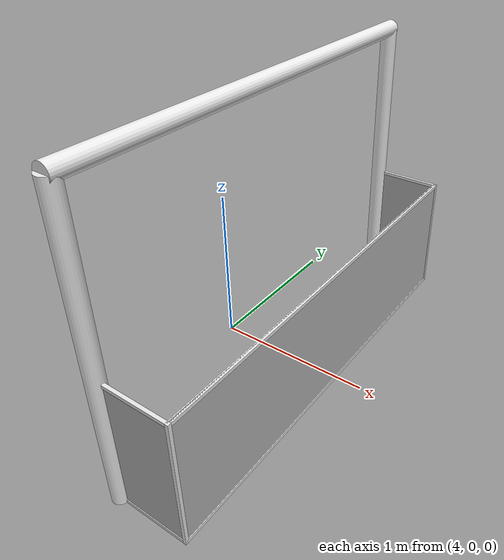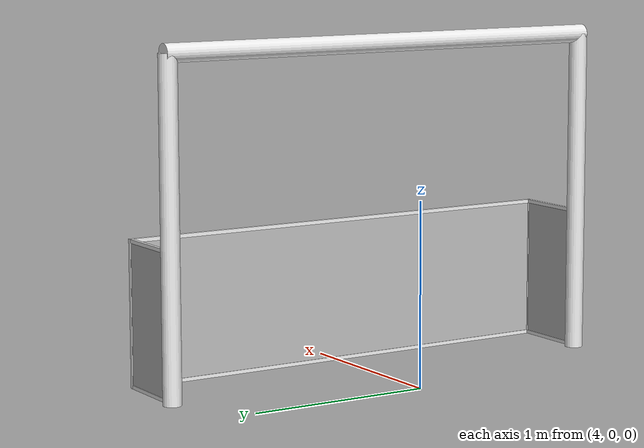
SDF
<sdf version='1.6'>
    <model name='RoboCup 2014 SPL Goal'>
        <static>false</static>
        <link name='left_post'>
            <pose frame=''>0 1.3 0.9 0 -0 0</pose>
            <collision name='collision'>
                <geometry>
                    <cylinder>
                        <radius>0.05</radius>
                        <length>1.8</length>
                    </cylinder>
                </geometry>
                <max_contacts>10</max_contacts>
                <surface>
                    <contact>
                        <ode/>
                    </contact>
                    <bounce/>
                    <friction>
                        <torsional>
                            <ode/>
                        </torsional>
                        <ode/>
                    </friction>
                </surface>
            </collision>
            <inertial>
                <mass>0.01</mass>
                <inertia>
                    <ixx>0.0000001</ixx>
                    <ixy>0.0000001</ixy>
                    <ixz>0.0000001</ixz>
                    <iyy>0.0000001</iyy>
                    <iyz>0.0000001</iyz>
                    <izz>0.0000001</izz>
                </inertia>
            </inertial>
            <visual name='visual'>
                <geometry>
                    <cylinder>
                        <radius>0.05</radius>
                        <length>1.8</length>
                    </cylinder>
                </geometry>
                <material>
                    <script>
                        <uri>file://media/materials/scripts/gazebo.material</uri>
                        <name>Gazebo/White</name>
                    </script>
                </material>
            </visual>
            <self_collide>0</self_collide>
            <kinematic>1</kinematic>
        </link>
        <link name='right_post'>
            <pose frame=''>0 -1.3 0.9 0 -0 0</pose>
            <inertial>
                <mass>0.01</mass>
                <inertia>
                    <ixx>0.0000001</ixx>
                    <ixy>0.0000001</ixy>
                    <ixz>0.0000001</ixz>
                    <iyy>0.0000001</iyy>
                    <iyz>0.0000001</iyz>
                    <izz>0.0000001</izz>
                </inertia>
            </inertial>
            <collision name='collision'>
                <geometry>
                    <cylinder>
                        <radius>0.05</radius>
                        <length>1.8</length>
                    </cylinder>
                </geometry>
                <max_contacts>10</max_contacts>
                <surface>
                    <contact>
                        <ode/>
                    </contact>
                    <bounce/>
                    <friction>
                        <torsional>
                            <ode/>
                        </torsional>
                        <ode/>
                    </friction>
                </surface>
            </collision>
            <visual name='visual'>
                <geometry>
                    <cylinder>
                        <radius>0.05</radius>
                        <length>1.8</length>
                    </cylinder>
                </geometry>
                <material>
                    <script>
                        <uri>file://media/materials/scripts/gazebo.material</uri>
                        <name>Gazebo/White</name>
                    </script>
                </material>
            </visual>
            <self_collide>0</self_collide>
            <kinematic>1</kinematic>
        </link>
        <link name='left_support_horiz_lower'>
            <pose frame=''>0.24 1.3 0.01 0 -0 0</pose>
            <inertial>
                <mass>0.01</mass>
                <inertia>
                    <ixx>0.0000001</ixx>
                    <ixy>0.0000001</ixy>
                    <ixz>0.0000001</ixz>
                    <iyy>0.0000001</iyy>
                    <iyz>0.0000001</iyz>
                    <izz>0.0000001</izz>
                </inertia>
            </inertial>
            <collision name='collision'>
                <geometry>
                    <box>
                        <size>0.38 0.02 0.02</size>
                    </box>
                </geometry>
                <max_contacts>10</max_contacts>
                <surface>
                    <contact>
                        <ode/>
                    </contact>
                    <bounce/>
                    <friction>
                        <torsional>
                            <ode/>
                        </torsional>
                        <ode/>
                    </friction>
                </surface>
            </collision>
            <visual name='visual'>
                <geometry>
                    <box>
                        <size>0.38 0.02 0.02</size>
                    </box>
                </geometry>
                <material>
                    <script>
                        <uri>file://media/materials/scripts/gazebo.material</uri>
                        <name>Gazebo/White</name>
                    </script>
                </material>
            </visual>
            <self_collide>0</self_collide>
            <kinematic>1</kinematic>
        </link>
        <link name='left_support_horiz_upper'>
            <pose frame=''>0.24 1.3 0.79 0 -0 0</pose>
            <inertial>
                <mass>0.01</mass>
                <inertia>
                    <ixx>0.0000001</ixx>
                    <ixy>0.0000001</ixy>
                    <ixz>0.0000001</ixz>
                    <iyy>0.0000001</iyy>
                    <iyz>0.0000001</iyz>
                    <izz>0.0000001</izz>
                </inertia>
            </inertial>
            <collision name='collision'>
                <geometry>
                    <box>
                        <size>0.38 0.02 0.02</size>
                    </box>
                </geometry>
                <max_contacts>10</max_contacts>
                <surface>
                    <contact>
                        <ode/>
                    </contact>
                    <bounce/>
                    <friction>
                        <torsional>
                            <ode/>
                        </torsional>
                        <ode/>
                    </friction>
                </surface>
            </collision>
            <visual name='visual'>
                <geometry>
                    <box>
                        <size>0.38 0.02 0.02</size>
                    </box>
                </geometry>
                <material>
                    <script>
                        <uri>file://media/materials/scripts/gazebo.material</uri>
                        <name>Gazebo/White</name>
                    </script>
                </material>
            </visual>
            <self_collide>0</self_collide>
            <kinematic>1</kinematic>
        </link>
        <link name='left_support_vertical'>
            <pose frame=''>0.44 1.3 0.4 3.14159 1.57079 3.14159</pose>
            <inertial>
                <mass>0.01</mass>
                <inertia>
                    <ixx>0.0000001</ixx>
                    <ixy>0.0000001</ixy>
                    <ixz>0.0000001</ixz>
                    <iyy>0.0000001</iyy>
                    <iyz>0.0000001</iyz>
                    <izz>0.0000001</izz>
                </inertia>
            </inertial>
            <collision name='collision'>
                <geometry>
                    <box>
                        <size>0.8 0.02 0.02</size>
                    </box>
                </geometry>
                <max_contacts>10</max_contacts>
                <surface>
                    <contact>
                        <ode/>
                    </contact>
                    <bounce/>
                    <friction>
                        <torsional>
                            <ode/>
                        </torsional>
                        <ode/>
                    </friction>
                </surface>
            </collision>
            <visual name='visual'>
                <geometry>
                    <box>
                        <size>0.8 0.02 0.02</size>
                    </box>
                </geometry>
                <material>
                    <script>
                        <uri>file://media/materials/scripts/gazebo.material</uri>
                        <name>Gazebo/White</name>
                    </script>
                </material>
            </visual>
            <self_collide>0</self_collide>
            <kinematic>1</kinematic>
        </link>
        <link name='right_support_horiz_lower'>
            <pose frame=''>0.24 -1.3 0.01 0 -0 0</pose>
            <inertial>
                <mass>0.01</mass>
                <inertia>
                    <ixx>0.0000001</ixx>
                    <ixy>0.0000001</ixy>
                    <ixz>0.0000001</ixz>
                    <iyy>0.0000001</iyy>
                    <iyz>0.0000001</iyz>
                    <izz>0.0000001</izz>
                </inertia>
            </inertial>
            <collision name='collision'>
                <geometry>
                    <box>
                        <size>0.38 0.02 0.02</size>
                    </box>
                </geometry>
                <max_contacts>10</max_contacts>
                <surface>
                    <contact>
                        <ode/>
                    </contact>
                    <bounce/>
                    <friction>
                        <torsional>
                            <ode/>
                        </torsional>
                        <ode/>
                    </friction>
                </surface>
            </collision>
            <visual name='visual'>
                <geometry>
                    <box>
                        <size>0.38 0.02 0.02</size>
                    </box>
                </geometry>
                <material>
                    <script>
                        <uri>file://media/materials/scripts/gazebo.material</uri>
                        <name>Gazebo/White</name>
                    </script>
                </material>
            </visual>
            <self_collide>0</self_collide>
            <kinematic>1</kinematic>
        </link>
        <link name='right_support_horiz_upper'>
            <pose frame=''>0.24 -1.3 0.79 0 -0 0</pose>
            <inertial>
                <mass>0.01</mass>
                <inertia>
                    <ixx>0.0000001</ixx>
                    <ixy>0.0000001</ixy>
                    <ixz>0.0000001</ixz>
                    <iyy>0.0000001</iyy>
                    <iyz>0.0000001</iyz>
                    <izz>0.0000001</izz>
                </inertia>
            </inertial>
            <collision name='collision'>
                <geometry>
                    <box>
                        <size>0.38 0.02 0.02</size>
                    </box>
                </geometry>
                <max_contacts>10</max_contacts>
                <surface>
                    <contact>
                        <ode/>
                    </contact>
                    <bounce/>
                    <friction>
                        <torsional>
                            <ode/>
                        </torsional>
                        <ode/>
                    </friction>
                </surface>
            </collision>
            <visual name='visual'>
                <geometry>
                    <box>
                        <size>0.38 0.02 0.02</size>
                    </box>
                </geometry>
                <material>
                    <script>
                        <uri>file://media/materials/scripts/gazebo.material</uri>
                        <name>Gazebo/White</name>
                    </script>
                </material>
            </visual>
            <self_collide>0</self_collide>
            <kinematic>1</kinematic>
        </link>
        <link name='right_support_vertical'>
            <pose frame=''>0.44 -1.3 0.4 3.14159 1.57079 3.14159</pose>
            <inertial>
                <mass>0.01</mass>
                <inertia>
                    <ixx>0.0000001</ixx>
                    <ixy>0.0000001</ixy>
                    <ixz>0.0000001</ixz>
                    <iyy>0.0000001</iyy>
                    <iyz>0.0000001</iyz>
                    <izz>0.0000001</izz>
                </inertia>
            </inertial>
            <collision name='collision'>
                <geometry>
                    <box>
                        <size>0.8 0.02 0.02</size>
                    </box>
                </geometry>
                <max_contacts>10</max_contacts>
                <surface>
                    <contact>
                        <ode/>
                    </contact>
                    <bounce/>
                    <friction>
                        <torsional>
                            <ode/>
                        </torsional>
                        <ode/>
                    </friction>
                </surface>
            </collision>
            <visual name='visual'>
                <geometry>
                    <box>
                        <size>0.8 0.02 0.02</size>
                    </box>
                </geometry>
                <material>
                    <script>
                        <uri>file://media/materials/scripts/gazebo.material</uri>
                        <name>Gazebo/White</name>
                    </script>
                </material>
            </visual>
            <self_collide>0</self_collide>
            <kinematic>1</kinematic>
        </link>
        <link name='center_support_horiz_lower'>
            <pose frame=''>0.44 0 0.01 3.14159 1.57079 3.14159</pose>
            <inertial>
                <mass>0.01</mass>
                <inertia>
                    <ixx>0.0000001</ixx>
                    <ixy>0.0000001</ixy>
                    <ixz>0.0000001</ixz>
                    <iyy>0.0000001</iyy>
                    <iyz>0.0000001</iyz>
                    <izz>0.0000001</izz>
                </inertia>
            </inertial>
            <collision name='collision'>
                <geometry>
                    <box>
                        <size>0.02 2.6 0.02</size>
                    </box>
                </geometry>
                <max_contacts>10</max_contacts>
                <surface>
                    <contact>
                        <ode/>
                    </contact>
                    <bounce/>
                    <friction>
                        <torsional>
                            <ode/>
                        </torsional>
                        <ode/>
                    </friction>
                </surface>
            </collision>
            <visual name='visual'>
                <geometry>
                    <box>
                        <size>0.02 2.6 0.02</size>
                    </box>
                </geometry>
                <material>
                    <script>
                        <uri>file://media/materials/scripts/gazebo.material</uri>
                        <name>Gazebo/White</name>
                    </script>
                </material>
            </visual>
            <self_collide>0</self_collide>
            <kinematic>1</kinematic>
        </link>
        <link name='center_support_horiz_upper'>
            <pose frame=''>0.44 0 0.79 3.14159 1.57079 3.14159</pose>
            <inertial>
                <mass>0.01</mass>
                <inertia>
                    <ixx>0.0000001</ixx>
                    <ixy>0.0000001</ixy>
                    <ixz>0.0000001</ixz>
                    <iyy>0.0000001</iyy>
                    <iyz>0.0000001</iyz>
                    <izz>0.0000001</izz>
                </inertia>
            </inertial>
            <collision name='collision'>
                <geometry>
                    <box>
                        <size>0.02 2.6 0.02</size>
                    </box>
                </geometry>
                <max_contacts>10</max_contacts>
                <surface>
                    <contact>
                        <ode/>
                    </contact>
                    <bounce/>
                    <friction>
                        <torsional>
                            <ode/>
                        </torsional>
                        <ode/>
                    </friction>
                </surface>
            </collision>
            <visual name='visual'>
                <geometry>
                    <box>
                        <size>0.02 2.6 0.02</size>
                    </box>
                </geometry>
                <material>
                    <script>
                        <uri>file://media/materials/scripts/gazebo.material</uri>
                        <name>Gazebo/White</name>
                    </script>
                </material>
            </visual>
            <self_collide>0</self_collide>
            <kinematic>1</kinematic>
        </link>
        <link name='crossbar'>
            <pose frame=''>0 0 1.8 1.57 1.57 0</pose>
            <inertial>
                <mass>0.01</mass>
                <inertia>
                    <ixx>0.0000001</ixx>
                    <ixy>0.0000001</ixy>
                    <ixz>0.0000001</ixz>
                    <iyy>0.0000001</iyy>
                    <iyz>0.0000001</iyz>
                    <izz>0.0000001</izz>
                </inertia>
            </inertial>
            <collision name='collision'>
                <geometry>
                    <cylinder>
                        <radius>0.05</radius>
                        <length>2.65</length>
                    </cylinder>
                </geometry>
                <max_contacts>10</max_contacts>
                <surface>
                    <contact>
                        <ode/>
                    </contact>
                    <bounce/>
                    <friction>
                        <torsional>
                            <ode/>
                        </torsional>
                        <ode/>
                    </friction>
                </surface>
            </collision>
            <visual name='visual'>
                <geometry>
                    <cylinder>
                        <radius>0.05</radius>
                        <length>2.65</length>
                    </cylinder>
                </geometry>
                <material>
                    <script>
                        <uri>file://media/materials/scripts/gazebo.material</uri>
                        <name>Gazebo/White</name>
                    </script>
                </material>
            </visual>
            <self_collide>0</self_collide>
            <kinematic>1</kinematic>
        </link>
        <link name='center_net'>
            <pose frame=''>0.44 0 0.4 0 -0 0</pose>
            <inertial>
                <mass>0.01</mass>
                <inertia>
                    <ixx>0.0000001</ixx>
                    <ixy>0.0000001</ixy>
                    <ixz>0.0000001</ixz>
                    <iyy>0.0000001</iyy>
                    <iyz>0.0000001</iyz>
                    <izz>0.0000001</izz>
                </inertia>
            </inertial>
            <collision name='collision'>
                <geometry>
                    <box>
                        <size>0.01 2.6 0.8</size>
                    </box>
                </geometry>
                <max_contacts>10</max_contacts>
                <surface>
                    <contact>
                        <ode/>
                    </contact>
                    <bounce/>
                    <friction>
                        <torsional>
                            <ode/>
                        </torsional>
                        <ode/>
                    </friction>
                </surface>
            </collision>
            <visual name='visual'>
                <geometry>
                    <box>
                        <size>0.01 2.6 0.8</size>
                    </box>
                </geometry>
                <material>
                    <script>
                        <uri>model://robocup09_spl_field/materials/scripts/</uri>
                        <uri>model://robocup09_spl_field/materials/textures/</uri>
                        <name>RoboCup/Net</name>
                    </script>
                </material>
            </visual>
            <self_collide>0</self_collide>
            <kinematic>1</kinematic>
        </link>
        <link name='left_net'>
            <pose frame=''>0.24 1.3 0.4 0 -0 0</pose>
            <inertial>
                <mass>0.01</mass>
                <inertia>
                    <ixx>0.0000001</ixx>
                    <ixy>0.0000001</ixy>
                    <ixz>0.0000001</ixz>
                    <iyy>0.0000001</iyy>
                    <iyz>0.0000001</iyz>
                    <izz>0.0000001</izz>
                </inertia>
            </inertial>
            <collision name='collision'>
                <geometry>
                    <box>
                        <size>0.38 0.01 0.76</size>
                    </box>
                </geometry>
                <max_contacts>10</max_contacts>
                <surface>
                    <contact>
                        <ode/>
                    </contact>
                    <bounce/>
                    <friction>
                        <torsional>
                            <ode/>
                        </torsional>
                        <ode/>
                    </friction>
                </surface>
            </collision>
            <visual name='visual'>
                <geometry>
                    <box>
                        <size>0.38 0.01 0.76</size>
                    </box>
                </geometry>
                <material>
                    <script>
                        <uri>model://robocup09_spl_field/materials/scripts/</uri>
                        <uri>model://robocup09_spl_field/materials/textures/</uri>
                        <name>RoboCup/Net</name>
                    </script>
                </material>
            </visual>
            <self_collide>0</self_collide>
            <kinematic>1</kinematic>
        </link>
        <link name='right_net'>
            <pose frame=''>0.24 -1.3 0.4 0 -0 0</pose>
            <inertial>
                <mass>0.01</mass>
                <inertia>
                    <ixx>0.0000001</ixx>
                    <ixy>0.0000001</ixy>
                    <ixz>0.0000001</ixz>
                    <iyy>0.0000001</iyy>
                    <iyz>0.0000001</iyz>
                    <izz>0.0000001</izz>
                </inertia>
            </inertial>
            <collision name='collision'>
                <geometry>
                    <box>
                        <size>0.38 0.01 0.76</size>
                    </box>
                </geometry>
                <max_contacts>10</max_contacts>
                <surface>
                    <contact>
                        <ode/>
                    </contact>
                    <bounce/>
                    <friction>
                        <torsional>
                            <ode/>
                        </torsional>
                        <ode/>
                    </friction>
                </surface>
            </collision>
            <visual name='visual'>
                <geometry>
                    <box>
                        <size>0.38 0.01 0.76</size>
                    </box>
                </geometry>
                <material>
                    <script>
                        <uri>model://robocup09_spl_field/materials/scripts/</uri>
                        <uri>model://robocup09_spl_field/materials/textures/</uri>
                        <name>RoboCup/Net</name>
                    </script>
                </material>
            </visual>
            <self_collide>0</self_collide>
            <kinematic>1</kinematic>
        </link>
        <pose frame=''>4.38819 -0.032635 0 0 -0 0</pose>
    </model>
</sdf>
